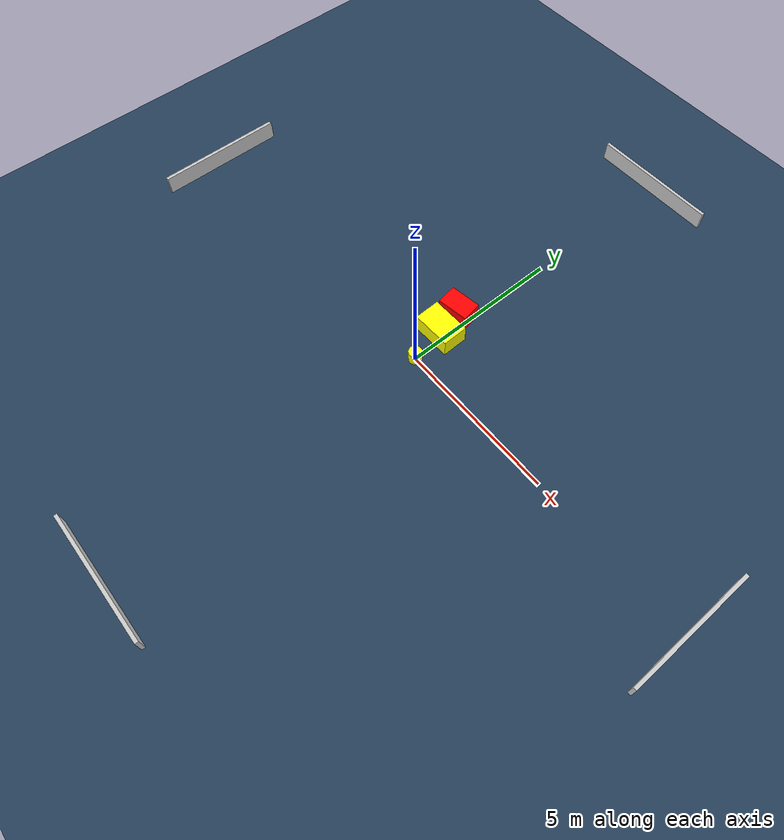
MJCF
<?xml version="1.0" ?>
<mujoco model="generated_environment">
  <option timestep="0.01" integrator="RK4" cone="elliptic"/>
  <default>
    <geom density="1"/>
  </default>
  <asset>
    <texture builtin="gradient" height="3072" name="skybox" rgb1="0.3 0.5 0.7" rgb2="0 0 0" type="skybox" width="512"/>
    <texture builtin="checker" height="300" name="groundplane" rgb1="0.2 0.3 0.4" rgb2="0.1 0.2 0.3" type="2d" width="300"/>
    <material name="groundplane" reflectance="0.2" texrepeat="5 5" texture="groundplane"/>
  </asset>
  <worldbody>
    <light dir="0 0 -1" directional="true" pos="0 0 1.5"/>
    <geom condim="3" friction="0.5 0.005 0.001" material="groundplane" name="floor" pos="0 0 0" size="0 0 0.05" type="plane"/>
    <body name="walls">
      <geom name="wall_1" condim="4" pos="-10.0 0.0 0.3" rgba="0.800000011920929 0.800000011920929 0.800000011920929 1.0" size="0.05 2.0 0.3" type="box"/>
      <geom name="wall_2" condim="4" pos="10.0 0.0 0.3" rgba="0.800000011920929 0.800000011920929 0.800000011920929 1.0" size="0.05 2.0 0.3" type="box"/>
      <geom name="wall_3" condim="4" pos="0.0 -10.0 0.3" rgba="0.800000011920929 0.800000011920929 0.800000011920929 1.0" size="2.0 0.05 0.3" type="box"/>
      <geom name="wall_4" condim="4" pos="0.0 10.0 0.3" rgba="0.800000011920929 0.800000011920929 0.800000011920929 1.0" size="2.0 0.05 0.3" type="box"/>
    </body>
    <body name="robot">
      <joint name="joint_x" type="slide" pos="0 0 0" axis="1 0 0"/>
      <joint name="joint_y" type="slide" pos="0 0 0" axis="0 1 0"/>
      <geom name="robot" type="cylinder" pos="0.0 0.0 0.2" size="0.2 0.2 0.0" mass="5.0" friction="1.0 0.005 0.0001" condim="4" rgba="1.0 1.0 0.0 1.0"/>
    </body>
    <body name="obstacle_1_movable">
      <geom name="obstacle_1_movable" condim="4" pos="-0.18252741475429166 1.1104076590544598 0.3" euler="0 0 271.4148522960289" friction="0.0 0.005 0.001" rgba="1.0 1.0 0.0 1.0" size="0.39606108774068355 0.6068687354612703 0.3" type="box" mass="0.1"/>
      <joint type="free"/>
    </body>
    <body name="obstacle_2_static">
      <geom name="obstacle_2_static" condim="4" pos="-0.3640894081761003 1.9536915063701306 0.3" euler="0 0 8.805352714702854" friction="0.0 0.005 0.001" rgba="1.0 0.0 0.0 1.0" size="0.4827619325216751 0.3157367694967548 0.3" type="box"/>
    </body>
  </worldbody>
  <actuator>
    <motor name="actuator_x" joint="joint_x" gear="1" ctrlrange="-1 1"/>
    <motor name="actuator_y" joint="joint_y" gear="1" ctrlrange="-1 1"/>
  </actuator>
</mujoco>
